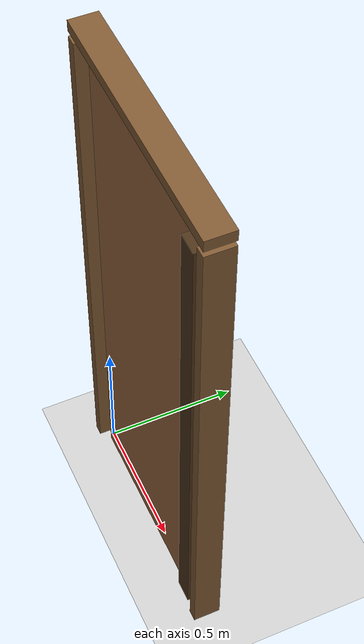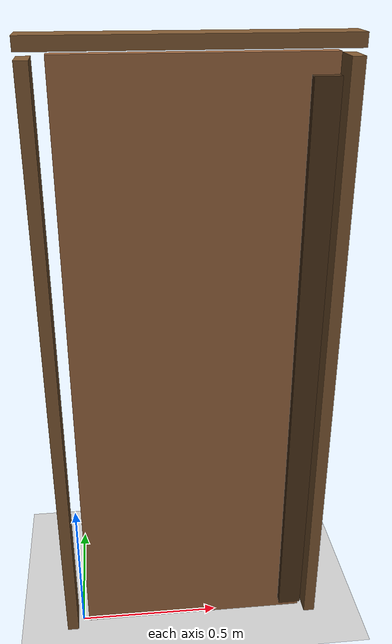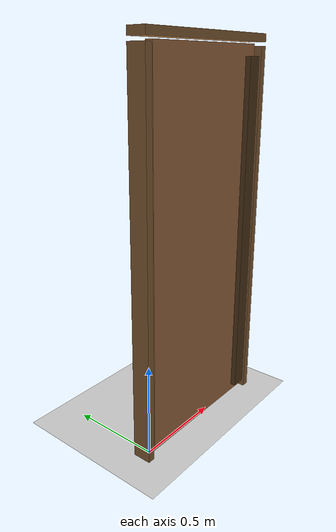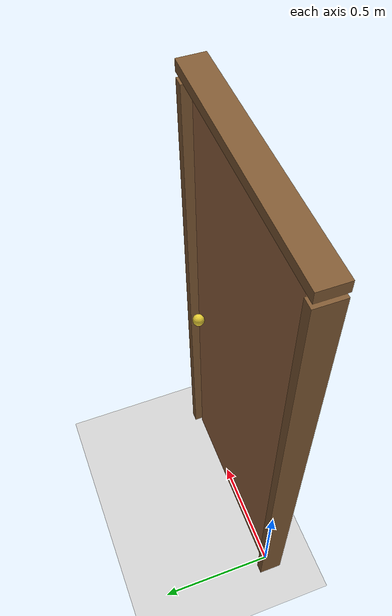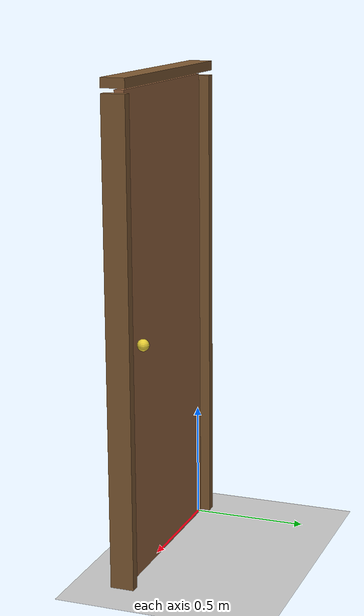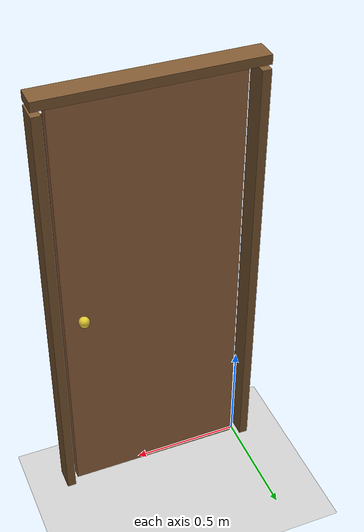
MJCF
<mujoco model="self_closing_door">
  <option timestep="0.002" gravity="0 0 -9.81"/>
  <worldbody>
    <light name="sun" pos="0 0 5" dir="0 0 -1"/>
    <geom name="floor" type="plane" size="5 5 0.1" rgba="0.8 0.8 0.8 1"/>
    <body name="frame" pos="0 0 0">
      <geom name="frame_hinge_post" type="box" pos="-0.04 0 1.0" size="0.02 0.05 1.0" rgba="0.5 0.35 0.2 1"/>
      <geom name="frame_latch_post" type="box" pos="0.86 0 1.0" size="0.02 0.05 1.0" rgba="0.5 0.35 0.2 1"/>
      <geom name="frame_lintel" type="box" pos="0.41 0 2.04" size="0.47 0.05 0.02" rgba="0.5 0.35 0.2 1"/>
    </body>
    <body name="jamb" pos="0 0 0">
      <geom name="jamb" type="box" pos="0.78 -0.035 1.0" size="0.04 0.015 0.95" rgba="0.3 0.2 0.1 1"/>
    </body>
    <body name="door" pos="0 0 0">
      <joint name="hinge" type="hinge" axis="0 0 1" pos="0 0 0" limited="true" range="0 1.6" stiffness="20" springref="-0.3" damping="8" solreflimit="0.01 1"/>
      <geom name="door_panel" type="box" pos="0.42 0 1.01" size="0.4 0.02 1.0" density="500" rgba="0.6 0.4 0.25 1"/>
      <geom name="door_knob" type="sphere" pos="0.74 0.05 1.0" size="0.025" density="500" rgba="0.9 0.8 0.2 1"/>
    </body>
  </worldbody>
  <keyframe>
    <key name="start" qpos="1.2" qvel="0"/>
  </keyframe>
</mujoco>
